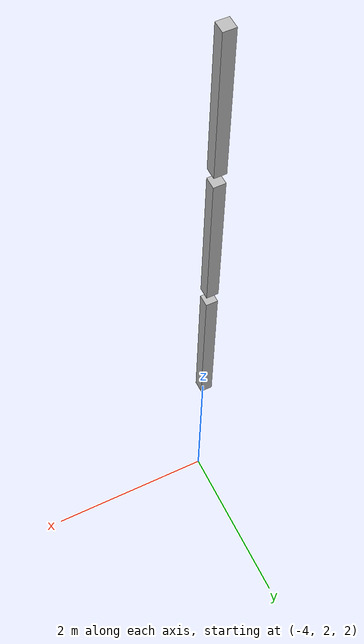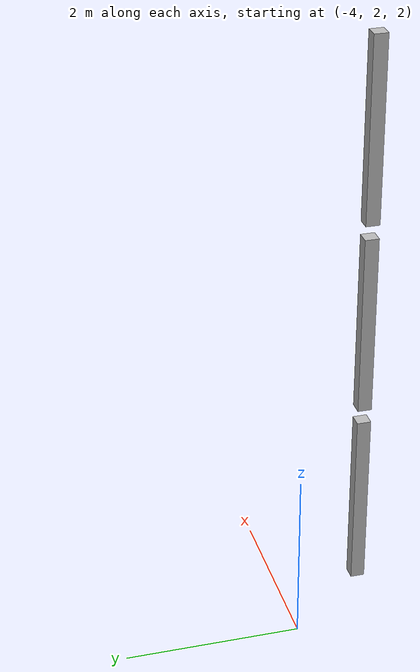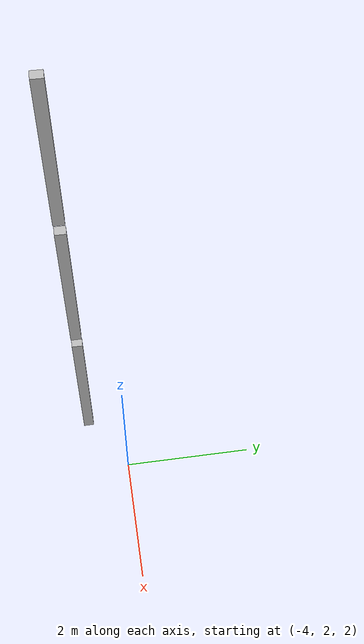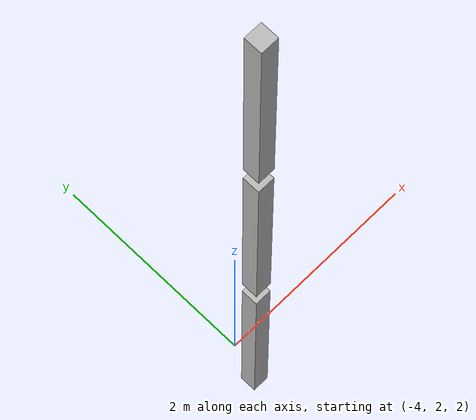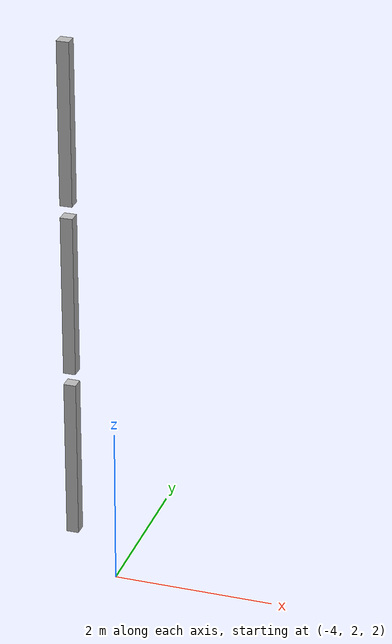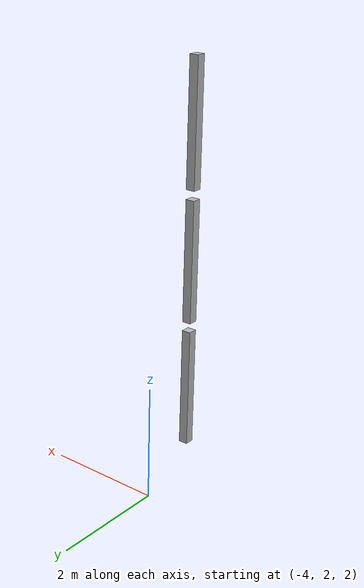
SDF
<sdf version="1.7">
 <world name="default">
  <model name="orthogonal_747_2.000.15_TS">
   <static>1</static>
   <link name="z_link_3_3_1">
    <inertial>
     <mass>1</mass>
     <inertia>
      <ixx>0.166667</ixx>
      <ixy>0</ixy>
      <ixz>0</ixz>
      <iyy>0.166667</iyy>
      <iyz>0</iyz>
      <izz>0.166667</izz>
     </inertia>
    </inertial>
    <pose>2.15 6.45 6.45 0 -0 0</pose>
    <visual name="visual_0">
     <laser_retro>3165</laser_retro>
     <geometry><box><size>0.15 1e-06 2</size></box></geometry>
     <material>
      <script><name>Gazebo/Grey</name><uri>file://media/materials/scripts/gazebo.material</uri></script>
      <shader type="pixel"><normal_map>__default__</normal_map></shader>
      <ambient>0.678 0.498 0.659 1</ambient>
      <diffuse>0.7 0.7 0.7 1</diffuse>
      <specular>0.01 0.01 0.01 1</specular>
      <emissive>0 0 0 1</emissive>
     </material>
     <pose>0 -0.075 0 0 -0 0</pose>
     <transparency>1</transparency>
    </visual>
    <visual name="visual_1">
     <laser_retro>3166</laser_retro>
     <geometry><box><size>0.15 1e-06 2</size></box></geometry>
     <material>
      <script><name>Gazebo/Grey</name><uri>file://media/materials/scripts/gazebo.material</uri></script>
      <shader type="pixel"><normal_map>__default__</normal_map></shader>
      <ambient>0.447 0.624 0.812 1</ambient>
      <diffuse>0.7 0.7 0.7 1</diffuse>
      <specular>0.01 0.01 0.01 1</specular>
      <emissive>0 0 0 1</emissive>
     </material>
     <pose>0 0.075 0 0 -0 0</pose>
     <transparency>1</transparency>
    </visual>
    <visual name="visual_2">
     <laser_retro>3167</laser_retro>
     <geometry><box><size>0.15 0.15 1e-06</size></box></geometry>
     <material>
      <script><name>Gazebo/Grey</name><uri>file://media/materials/scripts/gazebo.material</uri></script>
      <shader type="pixel"><normal_map>__default__</normal_map></shader>
      <ambient>0.988 0.686 0.243 1</ambient>
      <diffuse>0.7 0.7 0.7 1</diffuse>
      <specular>0.01 0.01 0.01 1</specular>
      <emissive>0 0 0 1</emissive>
     </material>
     <pose>0 0 -1 0 -0 0</pose>
     <transparency>1</transparency>
    </visual>
    <visual name="visual_3">
     <laser_retro>3168</laser_retro>
     <geometry><box><size>1e-06 0.15 2</size></box></geometry>
     <material>
      <script><name>Gazebo/Grey</name><uri>file://media/materials/scripts/gazebo.material</uri></script>
      <shader type="pixel"><normal_map>__default__</normal_map></shader>
      <ambient>0.988 0.914 0.31 1</ambient>
      <diffuse>0.7 0.7 0.7 1</diffuse>
      <specular>0.01 0.01 0.01 1</specular>
      <emissive>0 0 0 1</emissive>
     </material>
     <pose>0.075 0 0 0 -0 0</pose>
     <transparency>1</transparency>
    </visual>
    <visual name="visual_4">
     <laser_retro>3169</laser_retro>
     <geometry><box><size>0.15 0.15 1e-06</size></box></geometry>
     <material>
      <script><name>Gazebo/Grey</name><uri>file://media/materials/scripts/gazebo.material</uri></script>
      <shader type="pixel"><normal_map>__default__</normal_map></shader>
      <ambient>0.937 0.161 0.161 1</ambient>
      <diffuse>0.7 0.7 0.7 1</diffuse>
      <specular>0.01 0.01 0.01 1</specular>
      <emissive>0 0 0 1</emissive>
     </material>
     <pose>0 0 1 0 -0 0</pose>
     <transparency>1</transparency>
    </visual>
    <visual name="visual_5">
     <laser_retro>3170</laser_retro>
     <geometry><box><size>1e-06 0.15 2</size></box></geometry>
     <material>
      <script><name>Gazebo/Grey</name><uri>file://media/materials/scripts/gazebo.material</uri></script>
      <shader type="pixel"><normal_map>__default__</normal_map></shader>
      <ambient>0.541 0.886 0.204 1</ambient>
      <diffuse>0.7 0.7 0.7 1</diffuse>
      <specular>0.01 0.01 0.01 1</specular>
      <emissive>0 0 0 1</emissive>
     </material>
     <pose>-0.075 0 0 0 -0 0</pose>
     <transparency>1</transparency>
    </visual>
    <visual name="visual_texture">
     <geometry><box><size>0.149985 0.149985 1.9998</size></box></geometry>
     <material>
      <script>
       <uri>model://BASE_MODELS/simple_block_v2_textured/materials/scripts</uri>
       <uri>model://BASE_MODELS/simple_block_v2_textured/materials/textures</uri>
       <name>metal</name>
      </script>
     </material>
     <laser_retro>3171</laser_retro>
    </visual>
    <collision name="collision">
     <geometry><box><size>0.15 0.15 2</size></box></geometry>
     <surface>
      <friction>
       <ode><mu>1</mu><mu2>1</mu2><fdir1>0 0 0</fdir1><slip1>0</slip1><slip2>0</slip2></ode>
       <torsional>
        <coefficient>1</coefficient>
        <patch_radius>0</patch_radius>
        <surface_radius>0</surface_radius>
        <use_patch_radius>1</use_patch_radius>
        <ode><slip>0</slip></ode>
       </torsional>
      </friction>
      <bounce><restitution_coefficient>0</restitution_coefficient><threshold>1e+06</threshold></bounce>
      <contact>
       <collide_without_contact>0</collide_without_contact>
       <collide_without_contact_bitmask>1</collide_without_contact_bitmask>
       <collide_bitmask>1</collide_bitmask>
       <ode>
        <soft_cfm>0</soft_cfm>
        <soft_erp>0.2</soft_erp>
        <kp>1e+13</kp>
        <kd>1</kd>
        <max_vel>0.01</max_vel>
        <min_depth>0</min_depth>
       </ode>
       <bullet>
        <split_impulse>1</split_impulse>
        <split_impulse_penetration_threshold>-0.01</split_impulse_penetration_threshold>
        <soft_cfm>0</soft_cfm>
        <soft_erp>0.2</soft_erp>
        <kp>1e+13</kp>
        <kd>1</kd>
       </bullet>
      </contact>
     </surface>
    </collision>
   </link>
   <link name="z_link_4_3_1">
    <inertial>
     <mass>1</mass>
     <inertia>
      <ixx>0.166667</ixx>
      <ixy>0</ixy>
      <ixz>0</ixz>
      <iyy>0.166667</iyy>
      <iyz>0</iyz>
      <izz>0.166667</izz>
     </inertia>
    </inertial>
    <pose>2.15 6.45 8.6 0 -0 0</pose>
    <visual name="visual_0">
     <laser_retro>4068</laser_retro>
     <geometry><box><size>0.15 1e-06 2</size></box></geometry>
     <material>
      <script><name>Gazebo/Grey</name><uri>file://media/materials/scripts/gazebo.material</uri></script>
      <shader type="pixel"><normal_map>__default__</normal_map></shader>
      <ambient>0.678 0.498 0.659 1</ambient>
      <diffuse>0.7 0.7 0.7 1</diffuse>
      <specular>0.01 0.01 0.01 1</specular>
      <emissive>0 0 0 1</emissive>
     </material>
     <pose>0 -0.075 0 0 -0 0</pose>
     <transparency>1</transparency>
    </visual>
    <visual name="visual_1">
     <laser_retro>4069</laser_retro>
     <geometry><box><size>0.15 1e-06 2</size></box></geometry>
     <material>
      <script><name>Gazebo/Grey</name><uri>file://media/materials/scripts/gazebo.material</uri></script>
      <shader type="pixel"><normal_map>__default__</normal_map></shader>
      <ambient>0.447 0.624 0.812 1</ambient>
      <diffuse>0.7 0.7 0.7 1</diffuse>
      <specular>0.01 0.01 0.01 1</specular>
      <emissive>0 0 0 1</emissive>
     </material>
     <pose>0 0.075 0 0 -0 0</pose>
     <transparency>1</transparency>
    </visual>
    <visual name="visual_2">
     <laser_retro>4070</laser_retro>
     <geometry><box><size>0.15 0.15 1e-06</size></box></geometry>
     <material>
      <script><name>Gazebo/Grey</name><uri>file://media/materials/scripts/gazebo.material</uri></script>
      <shader type="pixel"><normal_map>__default__</normal_map></shader>
      <ambient>0.988 0.686 0.243 1</ambient>
      <diffuse>0.7 0.7 0.7 1</diffuse>
      <specular>0.01 0.01 0.01 1</specular>
      <emissive>0 0 0 1</emissive>
     </material>
     <pose>0 0 -1 0 -0 0</pose>
     <transparency>1</transparency>
    </visual>
    <visual name="visual_3">
     <laser_retro>4071</laser_retro>
     <geometry><box><size>1e-06 0.15 2</size></box></geometry>
     <material>
      <script><name>Gazebo/Grey</name><uri>file://media/materials/scripts/gazebo.material</uri></script>
      <shader type="pixel"><normal_map>__default__</normal_map></shader>
      <ambient>0.988 0.914 0.31 1</ambient>
      <diffuse>0.7 0.7 0.7 1</diffuse>
      <specular>0.01 0.01 0.01 1</specular>
      <emissive>0 0 0 1</emissive>
     </material>
     <pose>0.075 0 0 0 -0 0</pose>
     <transparency>1</transparency>
    </visual>
    <visual name="visual_4">
     <laser_retro>4072</laser_retro>
     <geometry><box><size>0.15 0.15 1e-06</size></box></geometry>
     <material>
      <script><name>Gazebo/Grey</name><uri>file://media/materials/scripts/gazebo.material</uri></script>
      <shader type="pixel"><normal_map>__default__</normal_map></shader>
      <ambient>0.937 0.161 0.161 1</ambient>
      <diffuse>0.7 0.7 0.7 1</diffuse>
      <specular>0.01 0.01 0.01 1</specular>
      <emissive>0 0 0 1</emissive>
     </material>
     <pose>0 0 1 0 -0 0</pose>
     <transparency>1</transparency>
    </visual>
    <visual name="visual_5">
     <laser_retro>4073</laser_retro>
     <geometry><box><size>1e-06 0.15 2</size></box></geometry>
     <material>
      <script><name>Gazebo/Grey</name><uri>file://media/materials/scripts/gazebo.material</uri></script>
      <shader type="pixel"><normal_map>__default__</normal_map></shader>
      <ambient>0.541 0.886 0.204 1</ambient>
      <diffuse>0.7 0.7 0.7 1</diffuse>
      <specular>0.01 0.01 0.01 1</specular>
      <emissive>0 0 0 1</emissive>
     </material>
     <pose>-0.075 0 0 0 -0 0</pose>
     <transparency>1</transparency>
    </visual>
    <visual name="visual_texture">
     <geometry><box><size>0.149985 0.149985 1.9998</size></box></geometry>
     <material>
      <script>
       <uri>model://BASE_MODELS/simple_block_v2_textured/materials/scripts</uri>
       <uri>model://BASE_MODELS/simple_block_v2_textured/materials/textures</uri>
       <name>metal</name>
      </script>
     </material>
     <laser_retro>4074</laser_retro>
    </visual>
    <collision name="collision">
     <geometry><box><size>0.15 0.15 2</size></box></geometry>
     <surface>
      <friction>
       <ode><mu>1</mu><mu2>1</mu2><fdir1>0 0 0</fdir1><slip1>0</slip1><slip2>0</slip2></ode>
       <torsional>
        <coefficient>1</coefficient>
        <patch_radius>0</patch_radius>
        <surface_radius>0</surface_radius>
        <use_patch_radius>1</use_patch_radius>
        <ode><slip>0</slip></ode>
       </torsional>
      </friction>
      <bounce><restitution_coefficient>0</restitution_coefficient><threshold>1e+06</threshold></bounce>
      <contact>
       <collide_without_contact>0</collide_without_contact>
       <collide_without_contact_bitmask>1</collide_without_contact_bitmask>
       <collide_bitmask>1</collide_bitmask>
       <ode>
        <soft_cfm>0</soft_cfm>
        <soft_erp>0.2</soft_erp>
        <kp>1e+13</kp>
        <kd>1</kd>
        <max_vel>0.01</max_vel>
        <min_depth>0</min_depth>
       </ode>
       <bullet>
        <split_impulse>1</split_impulse>
        <split_impulse_penetration_threshold>-0.01</split_impulse_penetration_threshold>
        <soft_cfm>0</soft_cfm>
        <soft_erp>0.2</soft_erp>
        <kp>1e+13</kp>
        <kd>1</kd>
       </bullet>
      </contact>
     </surface>
    </collision>
   </link>
   <link name="z_link_5_3_1">
    <inertial>
     <mass>1</mass>
     <inertia>
      <ixx>0.166667</ixx>
      <ixy>0</ixy>
      <ixz>0</ixz>
      <iyy>0.166667</iyy>
      <iyz>0</iyz>
      <izz>0.166667</izz>
     </inertia>
    </inertial>
    <pose>2.15 6.45 10.75 0 -0 0</pose>
    <visual name="visual_0">
     <laser_retro>4971</laser_retro>
     <geometry><box><size>0.15 1e-06 2</size></box></geometry>
     <material>
      <script><name>Gazebo/Grey</name><uri>file://media/materials/scripts/gazebo.material</uri></script>
      <shader type="pixel"><normal_map>__default__</normal_map></shader>
      <ambient>0.678 0.498 0.659 1</ambient>
      <diffuse>0.7 0.7 0.7 1</diffuse>
      <specular>0.01 0.01 0.01 1</specular>
      <emissive>0 0 0 1</emissive>
     </material>
     <pose>0 -0.075 0 0 -0 0</pose>
     <transparency>1</transparency>
    </visual>
    <visual name="visual_1">
     <laser_retro>4972</laser_retro>
     <geometry><box><size>0.15 1e-06 2</size></box></geometry>
     <material>
      <script><name>Gazebo/Grey</name><uri>file://media/materials/scripts/gazebo.material</uri></script>
      <shader type="pixel"><normal_map>__default__</normal_map></shader>
      <ambient>0.447 0.624 0.812 1</ambient>
      <diffuse>0.7 0.7 0.7 1</diffuse>
      <specular>0.01 0.01 0.01 1</specular>
      <emissive>0 0 0 1</emissive>
     </material>
     <pose>0 0.075 0 0 -0 0</pose>
     <transparency>1</transparency>
    </visual>
    <visual name="visual_2">
     <laser_retro>4973</laser_retro>
     <geometry><box><size>0.15 0.15 1e-06</size></box></geometry>
     <material>
      <script><name>Gazebo/Grey</name><uri>file://media/materials/scripts/gazebo.material</uri></script>
      <shader type="pixel"><normal_map>__default__</normal_map></shader>
      <ambient>0.988 0.686 0.243 1</ambient>
      <diffuse>0.7 0.7 0.7 1</diffuse>
      <specular>0.01 0.01 0.01 1</specular>
      <emissive>0 0 0 1</emissive>
     </material>
     <pose>0 0 -1 0 -0 0</pose>
     <transparency>1</transparency>
    </visual>
    <visual name="visual_3">
     <laser_retro>4974</laser_retro>
     <geometry><box><size>1e-06 0.15 2</size></box></geometry>
     <material>
      <script><name>Gazebo/Grey</name><uri>file://media/materials/scripts/gazebo.material</uri></script>
      <shader type="pixel"><normal_map>__default__</normal_map></shader>
      <ambient>0.988 0.914 0.31 1</ambient>
      <diffuse>0.7 0.7 0.7 1</diffuse>
      <specular>0.01 0.01 0.01 1</specular>
      <emissive>0 0 0 1</emissive>
     </material>
     <pose>0.075 0 0 0 -0 0</pose>
     <transparency>1</transparency>
    </visual>
    <visual name="visual_4">
     <laser_retro>4975</laser_retro>
     <geometry><box><size>0.15 0.15 1e-06</size></box></geometry>
     <material>
      <script><name>Gazebo/Grey</name><uri>file://media/materials/scripts/gazebo.material</uri></script>
      <shader type="pixel"><normal_map>__default__</normal_map></shader>
      <ambient>0.937 0.161 0.161 1</ambient>
      <diffuse>0.7 0.7 0.7 1</diffuse>
      <specular>0.01 0.01 0.01 1</specular>
      <emissive>0 0 0 1</emissive>
     </material>
     <pose>0 0 1 0 -0 0</pose>
     <transparency>1</transparency>
    </visual>
    <visual name="visual_5">
     <laser_retro>4976</laser_retro>
     <geometry><box><size>1e-06 0.15 2</size></box></geometry>
     <material>
      <script><name>Gazebo/Grey</name><uri>file://media/materials/scripts/gazebo.material</uri></script>
      <shader type="pixel"><normal_map>__default__</normal_map></shader>
      <ambient>0.541 0.886 0.204 1</ambient>
      <diffuse>0.7 0.7 0.7 1</diffuse>
      <specular>0.01 0.01 0.01 1</specular>
      <emissive>0 0 0 1</emissive>
     </material>
     <pose>-0.075 0 0 0 -0 0</pose>
     <transparency>1</transparency>
    </visual>
    <visual name="visual_texture">
     <geometry><box><size>0.149985 0.149985 1.9998</size></box></geometry>
     <material>
      <script>
       <uri>model://BASE_MODELS/simple_block_v2_textured/materials/scripts</uri>
       <uri>model://BASE_MODELS/simple_block_v2_textured/materials/textures</uri>
       <name>metal</name>
      </script>
     </material>
     <laser_retro>4977</laser_retro>
    </visual>
    <collision name="collision">
     <geometry><box><size>0.15 0.15 2</size></box></geometry>
     <surface>
      <friction>
       <ode><mu>1</mu><mu2>1</mu2><fdir1>0 0 0</fdir1><slip1>0</slip1><slip2>0</slip2></ode>
       <torsional>
        <coefficient>1</coefficient>
        <patch_radius>0</patch_radius>
        <surface_radius>0</surface_radius>
        <use_patch_radius>1</use_patch_radius>
        <ode><slip>0</slip></ode>
       </torsional>
      </friction>
      <bounce><restitution_coefficient>0</restitution_coefficient><threshold>1e+06</threshold></bounce>
      <contact>
       <collide_without_contact>0</collide_without_contact>
       <collide_without_contact_bitmask>1</collide_without_contact_bitmask>
       <collide_bitmask>1</collide_bitmask>
       <ode>
        <soft_cfm>0</soft_cfm>
        <soft_erp>0.2</soft_erp>
        <kp>1e+13</kp>
        <kd>1</kd>
        <max_vel>0.01</max_vel>
        <min_depth>0</min_depth>
       </ode>
       <bullet>
        <split_impulse>1</split_impulse>
        <split_impulse_penetration_threshold>-0.01</split_impulse_penetration_threshold>
        <soft_cfm>0</soft_cfm>
        <soft_erp>0.2</soft_erp>
        <kp>1e+13</kp>
        <kd>1</kd>
       </bullet>
      </contact>
     </surface>
    </collision>
   </link>
   <pose>-6.47624 -5 -2.5 0 -0 0</pose>
  </model>
 </world>
</sdf>
